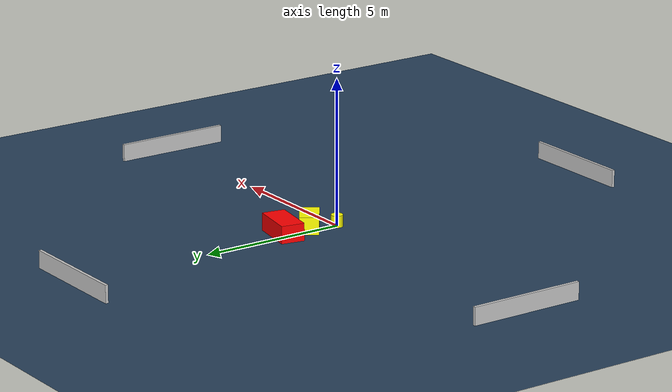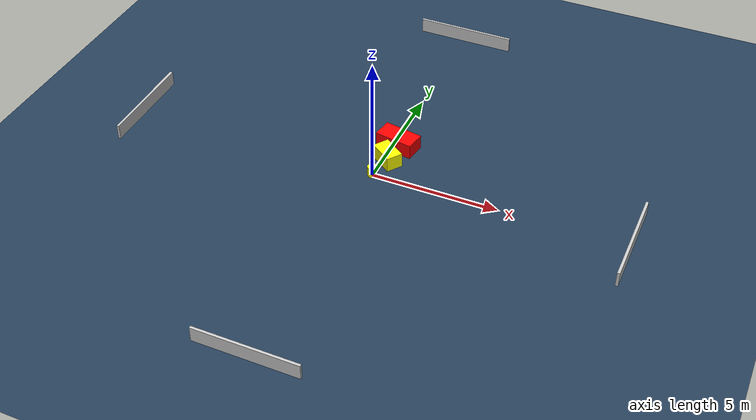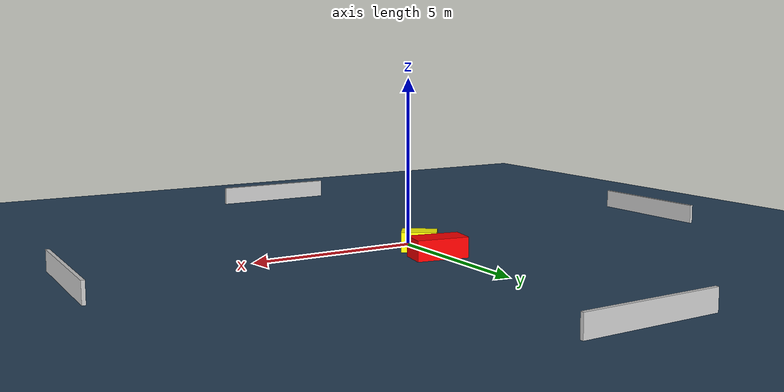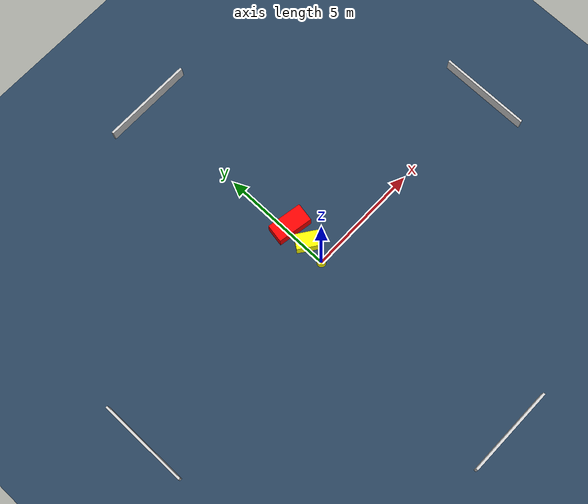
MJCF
<?xml version="1.0" ?>
<mujoco model="generated_environment">
  <option timestep="0.01" integrator="RK4" cone="elliptic"/>
  <default>
    <geom density="1"/>
  </default>
  <asset>
    <texture builtin="gradient" height="3072" name="skybox" rgb1="0.3 0.5 0.7" rgb2="0 0 0" type="skybox" width="512"/>
    <texture builtin="checker" height="300" name="groundplane" rgb1="0.2 0.3 0.4" rgb2="0.1 0.2 0.3" type="2d" width="300"/>
    <material name="groundplane" reflectance="0.2" texrepeat="5 5" texture="groundplane"/>
  </asset>
  <worldbody>
    <light dir="0 0 -1" directional="true" pos="0 0 1.5"/>
    <geom condim="3" friction="0.5 0.005 0.001" material="groundplane" name="floor" pos="0 0 0" size="0 0 0.05" type="plane"/>
    <body name="walls">
      <geom name="wall_1" condim="4" pos="-10.0 0.0 0.3" rgba="0.800000011920929 0.800000011920929 0.800000011920929 1.0" size="0.05 2.0 0.3" type="box"/>
      <geom name="wall_2" condim="4" pos="10.0 0.0 0.3" rgba="0.800000011920929 0.800000011920929 0.800000011920929 1.0" size="0.05 2.0 0.3" type="box"/>
      <geom name="wall_3" condim="4" pos="0.0 -10.0 0.3" rgba="0.800000011920929 0.800000011920929 0.800000011920929 1.0" size="2.0 0.05 0.3" type="box"/>
      <geom name="wall_4" condim="4" pos="0.0 10.0 0.3" rgba="0.800000011920929 0.800000011920929 0.800000011920929 1.0" size="2.0 0.05 0.3" type="box"/>
    </body>
    <body name="robot">
      <joint name="joint_x" type="slide" pos="0 0 0" axis="1 0 0"/>
      <joint name="joint_y" type="slide" pos="0 0 0" axis="0 1 0"/>
      <geom name="robot" type="cylinder" pos="0.0 0.0 0.2" size="0.2 0.2 0.0" mass="5.0" friction="1.0 0.005 0.0001" condim="4" rgba="1.0 1.0 0.0 1.0"/>
    </body>
    <body name="obstacle_1_movable">
      <geom name="obstacle_1_movable" condim="4" pos="0.20561032350552852 0.9554914773415616 0.3" euler="0 0 144.76579935955718" friction="0.0 0.005 0.001" rgba="1.0 1.0 0.0 1.0" size="0.5176070765476503 0.32964583920859986 0.3" type="box" mass="0.1"/>
      <joint type="free"/>
    </body>
    <body name="obstacle_2_static">
      <geom name="obstacle_2_static" condim="4" pos="0.2222165590111369 1.9722232958972568 0.3" euler="0 0 170.1102518990332" friction="0.0 0.005 0.001" rgba="1.0 0.0 0.0 1.0" size="0.7745176160244964 0.4004060120455585 0.3" type="box"/>
    </body>
  </worldbody>
  <actuator>
    <motor name="actuator_x" joint="joint_x" gear="1" ctrlrange="-1 1"/>
    <motor name="actuator_y" joint="joint_y" gear="1" ctrlrange="-1 1"/>
  </actuator>
</mujoco>
